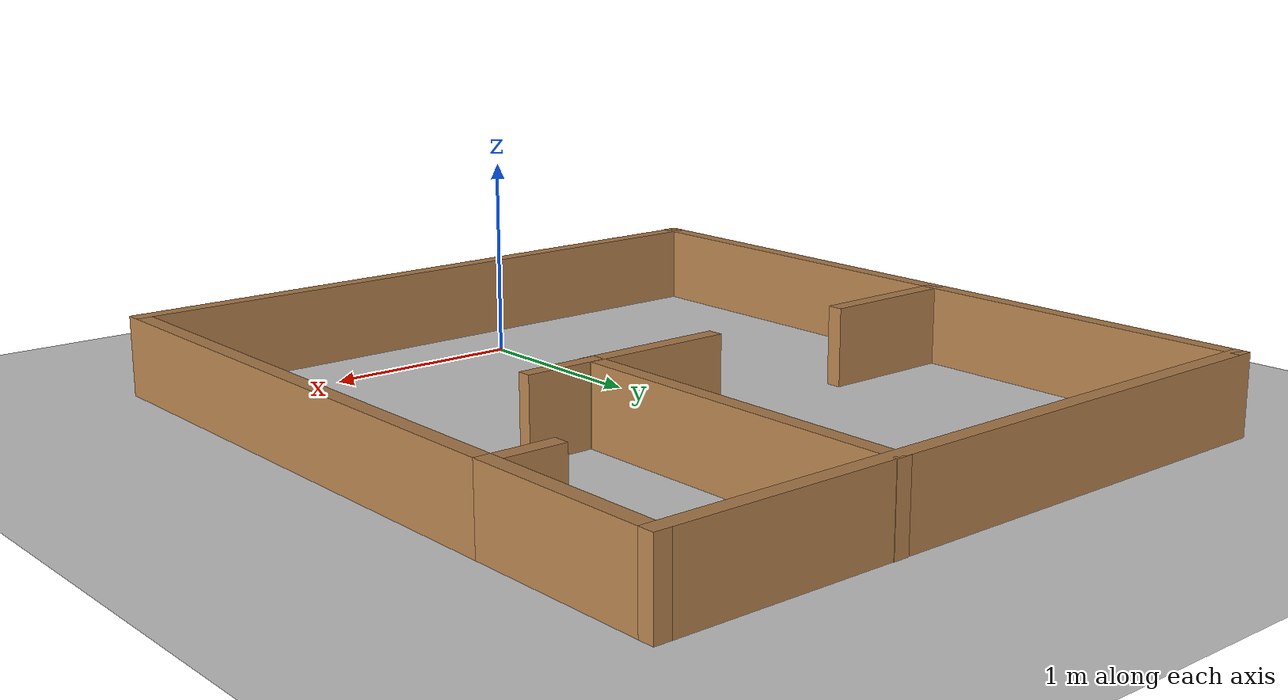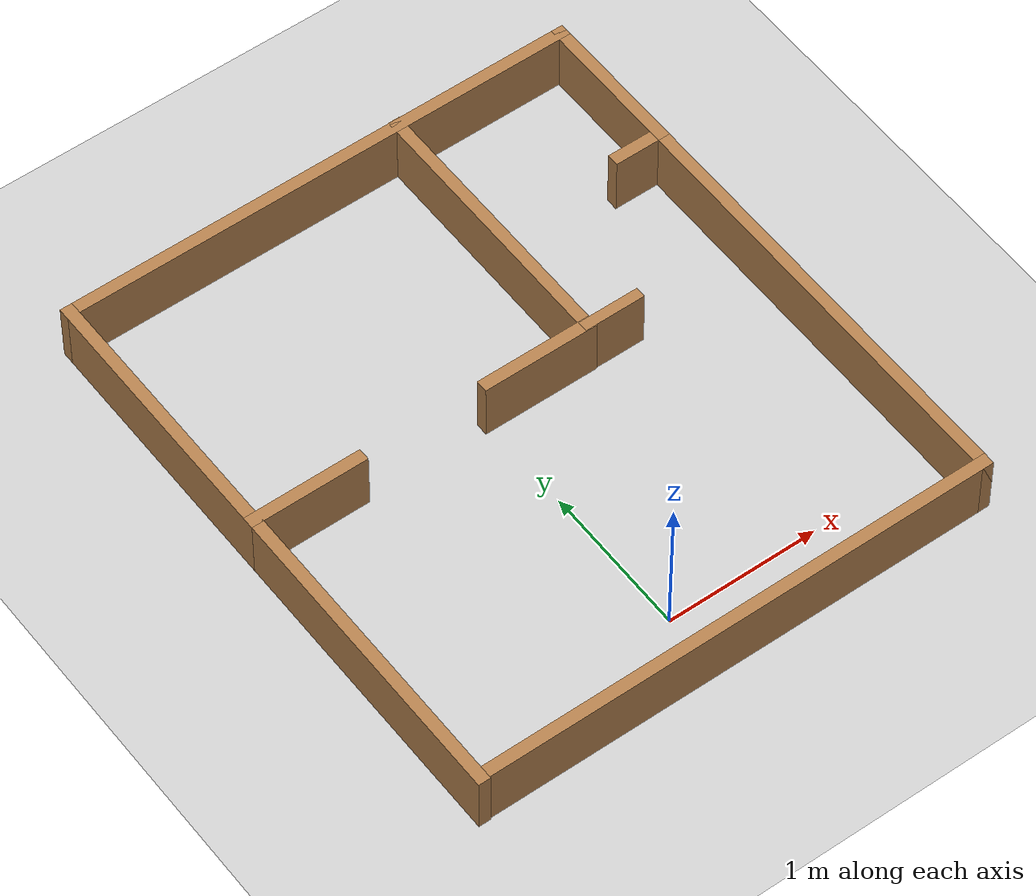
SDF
<sdf version="1.7">
 <world name="default">
  <light name="sun" type="directional">
   <pose>0 0 10 0 -0 0</pose>
   <diffuse>0.8 0.8 0.8 1</diffuse>
   <specular>0.2 0.2 0.2 1</specular>
   <attenuation>
    <range>1000</range>
    <constant>0.9</constant>
    <linear>0.01</linear>
    <quadratic>0.001</quadratic>
   </attenuation>
   <direction>-0.5 0.1 -0.9</direction>
   <spot><inner_angle>0</inner_angle><outer_angle>0</outer_angle><falloff>0</falloff></spot>
  </light>
  <model name="ground_plane">
   <static>1</static>
   <link name="link">
    <collision name="collision">
     <geometry><plane><normal>0 0 1</normal><size>100 100</size></plane></geometry>
     <surface>
      <contact><collide_bitmask>65535</collide_bitmask></contact>
      <friction><ode><mu>100</mu><mu2>50</mu2></ode></friction>
     </surface>
    </collision>
    <visual name="visual">
     <cast_shadows>0</cast_shadows>
     <geometry><plane><normal>0 0 1</normal><size>100 100</size></plane></geometry>
     <material>
      <script><uri>file://media/materials/scripts/gazebo.material</uri><name>Gazebo/Grey</name></script>
     </material>
    </visual>
   </link>
  </model>
  <gravity>0 0 -9.8</gravity>
  <magnetic_field>6e-06 2.3e-05 -4.2e-05</magnetic_field>
  <atmosphere type="adiabatic"/>
  <physics type="ode">
   <max_step_size>0.001</max_step_size>
   <real_time_factor>1</real_time_factor>
   <real_time_update_rate>1000</real_time_update_rate>
  </physics>
  <scene><ambient>0.4 0.4 0.4 1</ambient><background>0.7 0.7 0.7 1</background><shadows>1</shadows></scene>
  <spherical_coordinates>
   <surface_model>EARTH_WGS84</surface_model>
   <latitude_deg>0</latitude_deg>
   <longitude_deg>0</longitude_deg>
   <elevation>0</elevation>
   <heading_deg>0</heading_deg>
  </spherical_coordinates>
  <model name="lab_parkur">
   <pose>0.1315 1.5165 0 0 -0 0</pose>
   <link name="Wall_0">
    <collision name="Wall_0_Collision">
     <geometry><box><size>3.49 0.08 0.4</size></box></geometry>
     <pose>0 0 0.2 0 -0 0</pose>
    </collision>
    <visual name="Wall_0_Visual">
     <pose>0 0 0.2 0 -0 0</pose>
     <geometry><box><size>3.49 0.08 0.4</size></box></geometry>
     <material>
      <script><uri>file://media/materials/scripts/gazebo.material</uri><name>Gazebo/Wood</name></script>
      <ambient>1 1 1 1</ambient>
     </material>
     <meta><layer>0</layer></meta>
    </visual>
    <pose>0.0035 -1.9165 0 0 -0 0</pose>
   </link>
   <link name="Wall_10">
    <collision name="Wall_10_Collision">
     <geometry><box><size>1.019 0.08 0.4</size></box></geometry>
     <pose>0 0 0.2 0 -0 0</pose>
    </collision>
    <visual name="Wall_10_Visual">
     <pose>0 0 0.2 0 -0 0</pose>
     <geometry><box><size>1.019 0.08 0.4</size></box></geometry>
     <material>
      <script><uri>file://media/materials/scripts/gazebo.material</uri><name>Gazebo/Wood</name></script>
      <ambient>1 1 1 1</ambient>
     </material>
     <meta><layer>0</layer></meta>
    </visual>
    <pose>1.7085 1.452 0 0 -0 1.5708</pose>
   </link>
   <link name="Wall_12">
    <collision name="Wall_12_Collision">
     <geometry><box><size>3.497 0.08 0.4</size></box></geometry>
     <pose>0 0 0.2 0 -0 0</pose>
    </collision>
    <visual name="Wall_12_Visual">
     <pose>0 0 0.2 0 -0 0</pose>
     <geometry><box><size>3.497 0.08 0.4</size></box></geometry>
     <material>
      <script><uri>file://media/materials/scripts/gazebo.material</uri><name>Gazebo/Wood</name></script>
      <ambient>0.760784 0.662745 0.627451 1</ambient>
     </material>
     <meta><layer>0</layer></meta>
    </visual>
    <pose>-0 1.9215 0 0 -0 3.14159</pose>
   </link>
   <link name="Wall_14">
    <collision name="Wall_14_Collision">
     <geometry><box><size>1.873 0.08 0.4</size></box></geometry>
     <pose>0 0 0.2 0 -0 0</pose>
    </collision>
    <visual name="Wall_14_Visual">
     <pose>0 0 0.2 0 -0 0</pose>
     <geometry><box><size>1.873 0.08 0.4</size></box></geometry>
     <material>
      <script><uri>file://media/materials/scripts/gazebo.material</uri><name>Gazebo/Wood</name></script>
      <ambient>0.760784 0.662745 0.627451 1</ambient>
     </material>
     <meta><layer>0</layer></meta>
    </visual>
    <pose>0.5475 1.028 0 0 -0 -1.5708</pose>
   </link>
   <link name="Wall_18">
    <collision name="Wall_18_Collision">
     <geometry><box><size>0.771 0.08 0.4</size></box></geometry>
     <pose>0 0 0.2 0 -0 0</pose>
    </collision>
    <visual name="Wall_18_Visual">
     <pose>0 0 0.2 0 -0 0</pose>
     <geometry><box><size>0.771 0.08 0.4</size></box></geometry>
     <material>
      <script><uri>file://media/materials/scripts/gazebo.material</uri><name>Gazebo/Wood</name></script>
      <ambient>1 1 1 1</ambient>
     </material>
     <meta><layer>0</layer></meta>
    </visual>
    <pose>0.202 0.1315 0 0 -0 3.14159</pose>
   </link>
   <link name="Wall_21">
    <collision name="Wall_21_Collision">
     <geometry><box><size>0.41 0.07 0.4</size></box></geometry>
     <pose>0 0 0.2 0 -0 0</pose>
    </collision>
    <visual name="Wall_21_Visual">
     <pose>0 0 0.2 0 -0 0</pose>
     <geometry><box><size>0.41 0.07 0.4</size></box></geometry>
     <material>
      <script><uri>file://media/materials/scripts/gazebo.material</uri><name>Gazebo/Wood</name></script>
      <ambient>1 1 1 1</ambient>
     </material>
     <meta><layer>0</layer></meta>
    </visual>
    <pose>0.7175 0.1315 0 0 -0 0</pose>
   </link>
   <link name="Wall_23">
    <collision name="Wall_23_Collision">
     <geometry><box><size>1.86 0.08 0.4</size></box></geometry>
     <pose>0 0 0.2 0 -0 0</pose>
    </collision>
    <visual name="Wall_23_Visual">
     <pose>0 0 0.2 0 -0 0</pose>
     <geometry><box><size>1.86 0.08 0.4</size></box></geometry>
     <material>
      <script><uri>file://media/materials/scripts/gazebo.material</uri><name>Gazebo/Wood</name></script>
      <ambient>0.760784 0.662745 0.627451 1</ambient>
     </material>
     <meta><layer>0</layer></meta>
    </visual>
    <pose>-1.7085 1.0315 0 0 -0 -1.5708</pose>
   </link>
   <link name="Wall_25">
    <collision name="Wall_25_Collision">
     <geometry><box><size>0.777 0.08 0.4</size></box></geometry>
     <pose>0 0 0.2 0 -0 0</pose>
    </collision>
    <visual name="Wall_25_Visual">
     <pose>0 0 0.2 0 -0 0</pose>
     <geometry><box><size>0.777 0.08 0.4</size></box></geometry>
     <material>
      <script><uri>file://media/materials/scripts/gazebo.material</uri><name>Gazebo/Wood</name></script>
      <ambient>1 1 1 1</ambient>
     </material>
     <meta><layer>0</layer></meta>
    </visual>
    <pose>-1.36 0.1415 0 0 -0 0</pose>
   </link>
   <link name="Wall_27">
    <collision name="Wall_27_Collision">
     <geometry><box><size>2.146 0.08 0.4</size></box></geometry>
     <pose>0 0 0.2 0 -0 0</pose>
    </collision>
    <visual name="Wall_27_Visual">
     <pose>0 0 0.2 0 -0 0</pose>
     <geometry><box><size>2.146 0.08 0.4</size></box></geometry>
     <material>
      <script><uri>file://media/materials/scripts/gazebo.material</uri><name>Gazebo/Wood</name></script>
      <ambient>0.760784 0.662745 0.627451 1</ambient>
     </material>
     <meta><layer>0</layer></meta>
    </visual>
    <pose>-1.7085 -0.8915 0 0 -0 -1.5708</pose>
   </link>
   <link name="Wall_4">
    <collision name="Wall_4_Collision">
     <geometry><box><size>2.979 0.08 0.4</size></box></geometry>
     <pose>0 0 0.2 0 -0 0</pose>
    </collision>
    <visual name="Wall_4_Visual">
     <pose>0 0 0.2 0 -0 0</pose>
     <geometry><box><size>2.979 0.08 0.4</size></box></geometry>
     <material>
      <script><uri>file://media/materials/scripts/gazebo.material</uri><name>Gazebo/Wood</name></script>
      <ambient>1 1 1 1</ambient>
     </material>
     <meta><layer>0</layer></meta>
    </visual>
    <pose>1.7085 -0.467 0 0 -0 1.5708</pose>
   </link>
   <link name="Wall_8">
    <collision name="Wall_8_Collision">
     <geometry><box><size>0.378 0.08 0.4</size></box></geometry>
     <pose>0 0 0.2 0 -0 0</pose>
    </collision>
    <visual name="Wall_8_Visual">
     <pose>0 0 0.2 0 -0 0</pose>
     <geometry><box><size>0.378 0.08 0.4</size></box></geometry>
     <material>
      <script><uri>file://media/materials/scripts/gazebo.material</uri><name>Gazebo/Wood</name></script>
      <ambient>1 1 1 1</ambient>
     </material>
     <meta><layer>0</layer></meta>
    </visual>
    <pose>1.5595 0.9825 0 0 -0 3.14159</pose>
   </link>
   <static>1</static>
  </model>
 </world>
</sdf>
